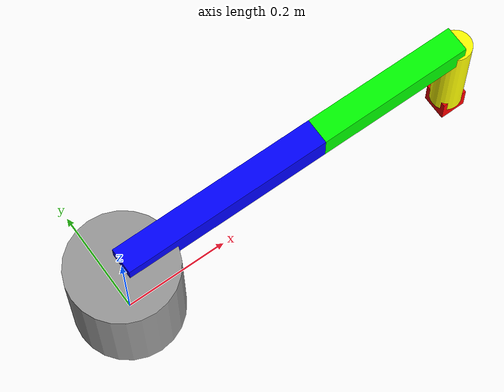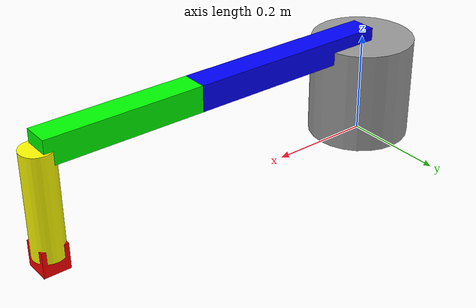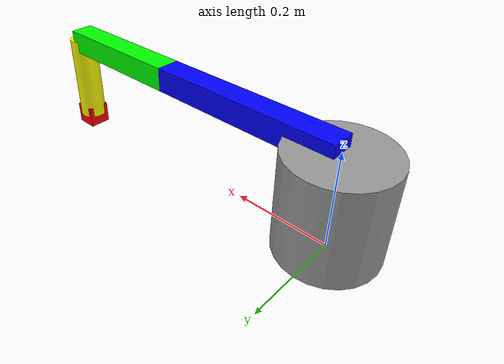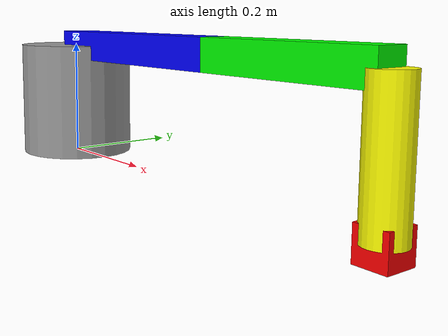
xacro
<?xml version="1.0"?>
<robot xmlns:xacro="http://ros.org/wiki/xacro" name="scara">

  <xacro:property name="PI" value="3.14159"/>
  <xacro:property name="use_paused_simulation" value="false" />

  <!-- World and Dummy Links -->
  <!-- BASE LINK with 1.6 m height -->
  <link name="base_link">
    <visual>
      <origin xyz="0 0 0.1" rpy="0 0 0"/> <!-- Half of 1.6 m -->
      <geometry>
	<cylinder radius="0.1" length="0.2"/>
      </geometry>
      <material name="grey">
        <color rgba="0.6 0.6 0.6 1.0"/>
      </material>
    </visual>
    <collision>
      <origin xyz="0 0 0.1" rpy="0 0 0"/>
      <geometry>
	<cylinder radius="0.1" length="0.2"/>
      </geometry>
      <surface>
	<friction>
	  <ode>
	    <mu>100</mu>
	    <mu2>50</mu2>
	  </ode>
	</friction>
      </surface>
    </collision>
    <inertial>
      <mass value="5.0"/>
      <inertia ixx="0.1" iyy="0.1" izz="0.1" ixy="0.0" ixz="0.0" iyz="0.0"/>
    </inertial>
  </link>

<!-- JOINT 1: Positioned on top of tall base -->
  <joint name="joint1" type="revolute">
    <parent link="base_link"/>
    <child link="link1"/>
    <origin xyz="0 0 0.2" rpy="0 0 0"/> <!-- Moved from 0.025 to 1.6 -->
    <axis xyz="0 0 1"/>
    <limit lower="-3.14" upper="3.14" effort="10.0" velocity="1.0"/>
    <dynamics damping="10" friction="1.0"/>
  </joint>

  <link name="link1">
    <visual>
      <geometry>
        <box size="0.4 0.05 0.05"/>
      </geometry>
      <origin xyz="0.2 0 0"/>
      <material name="blue">
        <color rgba="0 0 1 1"/>
      </material>
    </visual>
    <collision>
      <geometry>
        <box size="0.4 0.05 0.05"/>
      </geometry>
      <origin xyz="0.2 0 0"/>
    </collision>
    <inertial>
      <mass value="5.0"/>
      <origin xyz="0.2 0 0"/>
      <inertia ixx="0.002" iyy="0.002" izz="0.002"
               ixy="0.0" ixz="0.0" iyz="0.0"/>
    </inertial>
  </link>

  <!-- JOINT 2 -->
  <joint name="joint2" type="revolute">
    <parent link="link1"/>
    <child link="link2"/>
    <origin xyz="0.4 0 0" rpy="0 0 0"/>
    <axis xyz="0 0 1"/>
    <limit lower="-3.14" upper="3.14" effort="10.0" velocity="1.0"/>
    <dynamics damping="10" friction="1.0"/>
  </joint>

  <link name="link2">
    <visual>
      <geometry>
        <box size="0.3 0.05 0.05"/>
      </geometry>
      <origin xyz="0.15 0 0"/>
      <material name="green">
        <color rgba="0 1 0 1"/>
      </material>
    </visual>
    <collision>
      <geometry>
        <box size="0.3 0.05 0.05"/>
      </geometry>
      <origin xyz="0.15 0 0"/>
    </collision>
    <inertial>
      <mass value="7"/>
      <origin xyz="0.15 0 0"/>
      <inertia ixx="0.0015" iyy="0.0015" izz="0.0015"
               ixy="0.0" ixz="0.0" iyz="0.0"/>
    </inertial>
  </link>

  <!-- JOINT 3 -->
  <joint name="joint3" type="prismatic">
    <parent link="link2"/>
    <child link="link3"/>
    <origin xyz="0.3 0 0" rpy="0 0 0"/>
    <axis xyz="0 0 1"/>
    <limit lower="-0.2" upper="0" effort="10.0" velocity="0.2"/>
    <dynamics damping="10" friction="1.0"/>
  </joint>

  <link name="link3">
    <visual>
      <geometry>
        <cylinder radius="0.03" length="0.2"/>
      </geometry>
      <origin xyz="0 0 -0.1"/>
      <material name="yellow">
        <color rgba="1 1 0 1"/>
      </material>
    </visual>
    <collision>
      <geometry>
        <cylinder radius="0.03" length="0.2"/>
      </geometry>
      <origin xyz="0 0 -0.1"/>
    </collision>
    <inertial>
      <mass value="5"/>
      <origin xyz="0 0 -0.1"/>
      <inertia ixx="0.0003" iyy="0.0003" izz="0.0003"
               ixy="0.0" ixz="0.0" iyz="0.0"/>
    </inertial>
  </link>

  <!-- Fixed gripper -->
  <joint name="gripper_joint" type="fixed">
    <parent link="link3"/>
    <child link="gripper"/>
    <origin xyz="0 0 -0.2" rpy="0 0 0"/>
  </joint>

  <link name="gripper">
    <visual>
      <geometry>
        <box size="0.05 0.05 0.05"/>
      </geometry>
      <material name="red">
        <color rgba="1 0 0 1"/>
      </material>
    </visual>
    <collision>
      <geometry>
        <box size="0.05 0.05 0.05"/>
      </geometry>
    </collision>
    <inertial>
      <mass value="0.1"/>
      <inertia ixx="0.001" ixy="0.0" ixz="0.0"
               iyy="0.001" iyz="0.0"
               izz="0.001"/>
    </inertial>
  </link>

  <!-- ROS2 Control Hardware Interface -->
  <ros2_control name="scara_control" type="system">
    <hardware>
      <plugin>gazebo_ros2_control/GazeboSystem</plugin>
      <param name="robot_description">robot_description</param>
    </hardware>

    <joint name="joint1">
      <command_interface name="position"/>
      <state_interface name="position"/>
      <state_interface name="velocity"/>
    </joint>

    <joint name="joint2">
      <command_interface name="position"/>
      <state_interface name="position"/>
      <state_interface name="velocity"/>
    </joint>

    <joint name="joint3">
      <command_interface name="position"/>
      <state_interface name="position"/>
      <state_interface name="velocity"/>
    </joint>
  </ros2_control>

  <gazebo>
    <plugin name="gazebo_ros_control" filename="libgazebo_ros2_control.so">
      <parameters>config/scara_controllers.yaml</parameters>
    </plugin>
    <physics type="ode">
      <max_step_size>0.0001</max_step_size>
      <real_time_update_rate>2000</real_time_update_rate>
      <solver>
        <type>quick</type>
        <iters>100</iters>
        <sor>1.4</sor>
      </solver>
      <constraints>
        <cfm>0.00001</cfm>
        <erp>0.2</erp>
        <contact_max_correcting_vel>1000</contact_max_correcting_vel>
        <contact_surface_layer>0.001</contact_surface_layer>
      </constraints>
    </physics>
  </gazebo>
</robot>
